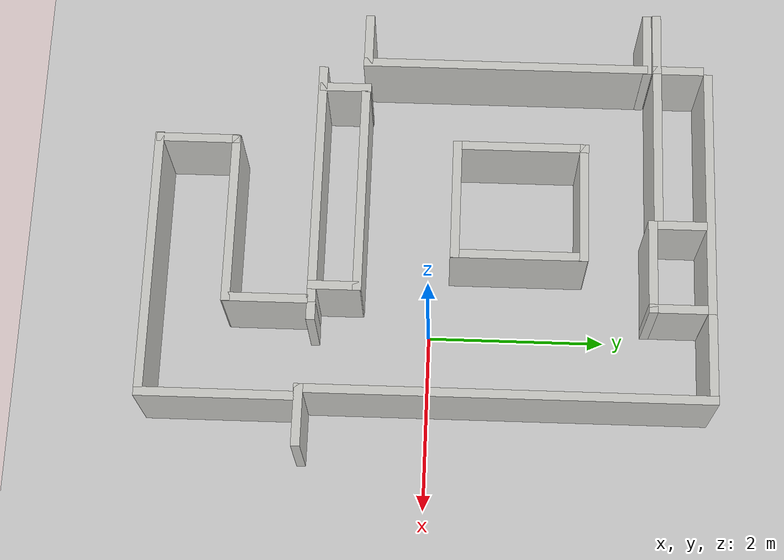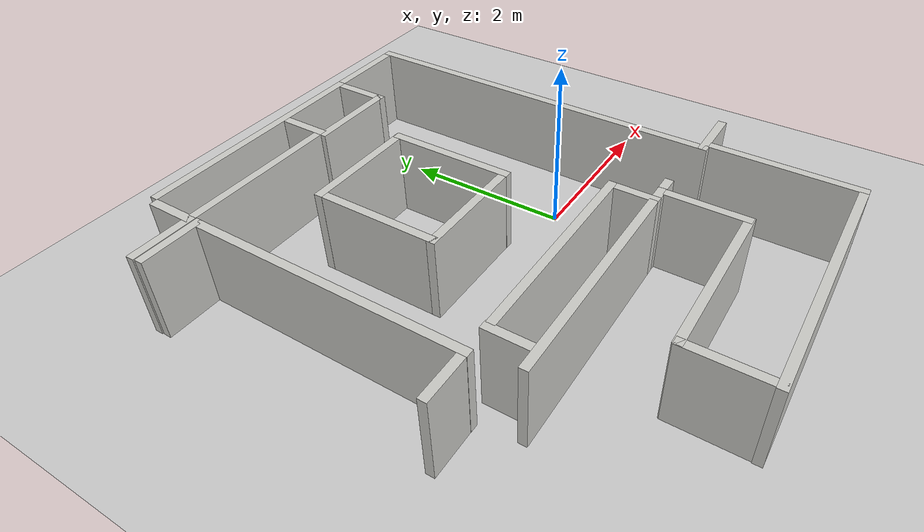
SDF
<sdf version="1.6">
 <world name="default">
  <scene><ambient>0.4 0.4 0.4 1</ambient><background>0.7 0.7 0.7 1</background><shadows>1</shadows></scene>
  <light name="sun" type="directional">
   <pose>0 0 10 0 -0 0</pose>
   <diffuse>0.8 0.8 0.8 1</diffuse>
   <specular>0.2 0.2 0.2 1</specular>
   <attenuation>
    <range>1000</range>
    <constant>0.9</constant>
    <linear>0.01</linear>
    <quadratic>0.001</quadratic>
   </attenuation>
   <direction>-0.5 0.1 -0.9</direction>
  </light>
  <model name="ground_plane">
   <static>1</static>
   <link name="link">
    <collision name="collision">
     <geometry><plane><normal>0 0 1</normal><size>100 100</size></plane></geometry>
     <surface>
      <contact><collide_bitmask>65535</collide_bitmask></contact>
      <friction><ode><mu>100</mu><mu2>50</mu2></ode></friction>
     </surface>
    </collision>
    <visual name="visual">
     <cast_shadows>0</cast_shadows>
     <geometry><plane><normal>0 0 1</normal><size>100 100</size></plane></geometry>
     <material>
      <script><uri>file://media/materials/scripts/gazebo.material</uri><name>Gazebo/Grey</name></script>
     </material>
    </visual>
   </link>
  </model>
  <physics name="default_physics" default="0" type="ode">
   <real_time_update_rate>1000</real_time_update_rate>
   <max_step_size>0.001</max_step_size>
   <real_time_factor>1</real_time_factor>
   <ode>
    <solver>
     <type>quick</type>
     <iters>150</iters>
     <precon_iters>0</precon_iters>
     <sor>1.4</sor>
     <use_dynamic_moi_rescaling>1</use_dynamic_moi_rescaling>
    </solver>
    <constraints>
     <cfm>1e-05</cfm>
     <erp>0.2</erp>
     <contact_max_correcting_vel>2000</contact_max_correcting_vel>
     <contact_surface_layer>0.01</contact_surface_layer>
    </constraints>
   </ode>
  </physics>
  <gravity>0 0 -9.8</gravity>
  <magnetic_field>6e-06 2.3e-05 -4.2e-05</magnetic_field>
  <atmosphere type="adiabatic"/>
  <audio><device>default</device></audio>
  <spherical_coordinates>
   <surface_model>EARTH_WGS84</surface_model>
   <latitude_deg>0</latitude_deg>
   <longitude_deg>0</longitude_deg>
   <elevation>0</elevation>
   <heading_deg>0</heading_deg>
  </spherical_coordinates>
  <model name="kaeriLab">
   <pose>-1.08229 0.002699 0 0 -0 0</pose>
   <link name="Wall_35">
    <collision name="Wall_35_Collision">
     <geometry><box><size>2.89 0.1 1</size></box></geometry>
     <pose>0 0 0.5 0 -0 0</pose>
    </collision>
    <visual name="Wall_35_Visual">
     <pose>0 0 0.5 0 -0 0</pose>
     <geometry><box><size>2.89 0.1 1</size></box></geometry>
     <material>
      <script><uri>file://media/materials/scripts/gazebo.material</uri><name>Gazebo/CeilingTiled</name></script>
      <ambient>0.921569 0.807843 0.615686 1</ambient>
     </material>
     <meta><layer>0</layer></meta>
    </visual>
    <pose>-0.440244 3.11379 0 0 -0 0</pose>
   </link>
   <link name="Wall_39">
    <collision name="Wall_39_Collision">
     <geometry><box><size>0.65 0.1 1</size></box></geometry>
     <pose>0 0 0.5 0 -0 0</pose>
    </collision>
    <visual name="Wall_39_Visual">
     <pose>0 0 0.5 0 -0 0</pose>
     <geometry><box><size>0.65 0.1 1</size></box></geometry>
     <material>
      <script><uri>file://media/materials/scripts/gazebo.material</uri><name>Gazebo/CeilingTiled</name></script>
      <ambient>0.921569 0.807843 0.615686 1</ambient>
     </material>
     <meta><layer>0</layer></meta>
    </visual>
    <pose>0.952886 2.74315 0 0 -0 -1.5708</pose>
   </link>
   <link name="Wall_41">
    <collision name="Wall_41_Collision">
     <geometry><box><size>1.08 0.1 1</size></box></geometry>
     <pose>0 0 0.5 0 -0 0</pose>
    </collision>
    <visual name="Wall_41_Visual">
     <pose>0 0 0.5 0 -0 0</pose>
     <geometry><box><size>1.08 0.1 1</size></box></geometry>
     <material>
      <script><uri>file://media/materials/scripts/gazebo.material</uri><name>Gazebo/CeilingTiled</name></script>
      <ambient>0.921569 0.807843 0.615686 1</ambient>
     </material>
     <meta><layer>0</layer></meta>
    </visual>
    <pose>0.463149 2.46825 0 0 -0 0</pose>
   </link>
   <link name="Wall_43">
    <collision name="Wall_43_Collision">
     <geometry><box><size>0.585 0.1 1</size></box></geometry>
     <pose>0 0 0.5 0 -0 0</pose>
    </collision>
    <visual name="Wall_43_Visual">
     <pose>0 0 0.5 0 -0 0</pose>
     <geometry><box><size>0.585 0.1 1</size></box></geometry>
     <material>
      <script><uri>file://media/materials/scripts/gazebo.material</uri><name>Gazebo/CeilingTiled</name></script>
      <ambient>0.921569 0.807843 0.615686 1</ambient>
     </material>
     <meta><layer>0</layer></meta>
    </visual>
    <pose>-0.027139 2.78202 0 0 -0 -1.5708</pose>
   </link>
   <link name="Wall_45">
    <collision name="Wall_45_Collision">
     <geometry><box><size>1.81 0.1 1</size></box></geometry>
     <pose>0 0 0.5 0 -0 0</pose>
    </collision>
    <visual name="Wall_45_Visual">
     <pose>0 0 0.5 0 -0 0</pose>
     <geometry><box><size>1.81 0.1 1</size></box></geometry>
     <material>
      <script><uri>file://media/materials/scripts/gazebo.material</uri><name>Gazebo/CeilingTiled</name></script>
      <ambient>0.921569 0.807843 0.615686 1</ambient>
     </material>
     <meta><layer>0</layer></meta>
    </visual>
    <pose>-0.980735 2.53224 0 0 -0 0</pose>
   </link>
   <link name="Wall_47">
    <collision name="Wall_47_Collision">
     <geometry><box><size>0.585 0.1 1</size></box></geometry>
     <pose>0 0 0.5 0 -0 0</pose>
    </collision>
    <visual name="Wall_47_Visual">
     <pose>0 0 0.5 0 -0 0</pose>
     <geometry><box><size>0.585 0.1 1</size></box></geometry>
     <material>
      <script><uri>file://media/materials/scripts/gazebo.material</uri><name>Gazebo/CeilingTiled</name></script>
      <ambient>0.921569 0.807843 0.615686 1</ambient>
     </material>
     <meta><layer>0</layer></meta>
    </visual>
    <pose>-1.92548 2.77441 0 0 -0 -1.5708</pose>
   </link>
   <link name="Wall_50">
    <collision name="Wall_50_Collision">
     <geometry><box><size>0.93 0.1 1</size></box></geometry>
     <pose>0 0 0.5 0 -0 0</pose>
    </collision>
    <visual name="Wall_50_Visual">
     <pose>0 0 0.5 0 -0 0</pose>
     <geometry><box><size>0.93 0.1 1</size></box></geometry>
     <material>
      <script><uri>file://media/materials/scripts/gazebo.material</uri><name>Gazebo/CeilingTiled</name></script>
      <ambient>0.921569 0.807843 0.615686 1</ambient>
     </material>
     <meta><layer>0</layer></meta>
    </visual>
    <pose>1.46647 3.11553 0 0 -0 0</pose>
   </link>
   <link name="Wall_52">
    <collision name="Wall_52_Collision">
     <geometry><box><size>4.6 0.1 1</size></box></geometry>
     <pose>0 0 0.5 0 -0 0</pose>
    </collision>
    <visual name="Wall_52_Visual">
     <pose>0 0 0.5 0 -0 0</pose>
     <geometry><box><size>4.6 0.1 1</size></box></geometry>
     <material>
      <script><uri>file://media/materials/scripts/gazebo.material</uri><name>Gazebo/CeilingTiled</name></script>
      <ambient>0.921569 0.807843 0.615686 1</ambient>
     </material>
     <meta><layer>0</layer></meta>
    </visual>
    <pose>1.97486 0.8655 0 0 -0 -1.5708</pose>
   </link>
   <link name="Wall_54">
    <collision name="Wall_54_Collision">
     <geometry><box><size>0.735 0.1 1</size></box></geometry>
     <pose>0 0 0.5 0 -0 0</pose>
    </collision>
    <visual name="Wall_54_Visual">
     <pose>0 0 0.5 0 -0 0</pose>
     <geometry><box><size>0.735 0.1 1</size></box></geometry>
     <material>
      <script><uri>file://media/materials/scripts/gazebo.material</uri><name>Gazebo/CeilingTiled</name></script>
      <ambient>0.921569 0.807843 0.615686 1</ambient>
     </material>
     <meta><layer>0</layer></meta>
    </visual>
    <pose>-2.25109 2.53005 0 0 -0 0</pose>
   </link>
   <link name="Wall_56">
    <collision name="Wall_56_Collision">
     <geometry><box><size>3.265 0.1 1</size></box></geometry>
     <pose>0 0 0.5 0 -0 0</pose>
    </collision>
    <visual name="Wall_56_Visual">
     <pose>0 0 0.5 0 -0 0</pose>
     <geometry><box><size>3.265 0.1 1</size></box></geometry>
     <material>
      <script><uri>file://media/materials/scripts/gazebo.material</uri><name>Gazebo/CeilingTiled</name></script>
      <ambient>0.921569 0.807843 0.615686 1</ambient>
     </material>
     <meta><layer>0</layer></meta>
    </visual>
    <pose>-1.92759 0.790342 0 0 -0 -1.5708</pose>
   </link>
   <link name="Wall_58">
    <collision name="Wall_58_Collision">
     <geometry><box><size>0.735 0.1 1</size></box></geometry>
     <pose>0 0 0.5 0 -0 0</pose>
    </collision>
    <visual name="Wall_58_Visual">
     <pose>0 0 0.5 0 -0 0</pose>
     <geometry><box><size>0.735 0.1 1</size></box></geometry>
     <material>
      <script><uri>file://media/materials/scripts/gazebo.material</uri><name>Gazebo/CeilingTiled</name></script>
      <ambient>0.921569 0.807843 0.615686 1</ambient>
     </material>
     <meta><layer>0</layer></meta>
    </visual>
    <pose>-2.24309 2.42006 0 0 -0 0</pose>
   </link>
   <link name="Wall_60">
    <collision name="Wall_60_Collision">
     <geometry><box><size>0.635 0.1 1</size></box></geometry>
     <pose>0 0 0.5 0 -0 0</pose>
    </collision>
    <visual name="Wall_60_Visual">
     <pose>0 0 0.5 0 -0 0</pose>
     <geometry><box><size>0.635 0.1 1</size></box></geometry>
     <material>
      <script><uri>file://media/materials/scripts/gazebo.material</uri><name>Gazebo/CeilingTiled</name></script>
      <ambient>0.921569 0.807843 0.615686 1</ambient>
     </material>
     <meta><layer>0</layer></meta>
    </visual>
    <pose>-2.20139 -0.789488 0 0 -0 0</pose>
   </link>
   <link name="Wall_62">
    <collision name="Wall_62_Collision">
     <geometry><box><size>1.4 0.1 1</size></box></geometry>
     <pose>0 0 0.5 0 -0 0</pose>
    </collision>
    <visual name="Wall_62_Visual">
     <pose>0 0 0.5 0 -0 0</pose>
     <geometry><box><size>1.4 0.1 1</size></box></geometry>
     <material>
      <script><uri>file://media/materials/scripts/gazebo.material</uri><name>Gazebo/CeilingTiled</name></script>
      <ambient>0.921569 0.807843 0.615686 1</ambient>
     </material>
     <meta><layer>0</layer></meta>
    </visual>
    <pose>-0.272595 1.70105 0 0 -0 0</pose>
   </link>
   <link name="Wall_65">
    <collision name="Wall_65_Collision">
     <geometry><box><size>1.53 0.1 1</size></box></geometry>
     <pose>0 0 0.5 0 -0 0</pose>
    </collision>
    <visual name="Wall_65_Visual">
     <pose>0 0 0.5 0 -0 0</pose>
     <geometry><box><size>1.53 0.1 1</size></box></geometry>
     <material>
      <script><uri>file://media/materials/scripts/gazebo.material</uri><name>Gazebo/CeilingTiled</name></script>
      <ambient>0.921569 0.807843 0.615686 1</ambient>
     </material>
     <meta><layer>0</layer></meta>
    </visual>
    <pose>-0.922199 0.986325 0 0 -0 -1.5708</pose>
   </link>
   <link name="Wall_68">
    <collision name="Wall_68_Collision">
     <geometry><box><size>1.53 0.1 1</size></box></geometry>
     <pose>0 0 0.5 0 -0 0</pose>
    </collision>
    <visual name="Wall_68_Visual">
     <pose>0 0 0.5 0 -0 0</pose>
     <geometry><box><size>1.53 0.1 1</size></box></geometry>
     <material>
      <script><uri>file://media/materials/scripts/gazebo.material</uri><name>Gazebo/CeilingTiled</name></script>
      <ambient>0.921569 0.807843 0.615686 1</ambient>
     </material>
     <meta><layer>0</layer></meta>
    </visual>
    <pose>0.378322 0.978907 0 0 -0 -1.5708</pose>
   </link>
   <link name="Wall_70">
    <collision name="Wall_70_Collision">
     <geometry><box><size>1.4 0.1 1</size></box></geometry>
     <pose>0 0 0.5 0 -0 0</pose>
    </collision>
    <visual name="Wall_70_Visual">
     <pose>0 0 0.5 0 -0 0</pose>
     <geometry><box><size>1.4 0.1 1</size></box></geometry>
     <material>
      <script><uri>file://media/materials/scripts/gazebo.material</uri><name>Gazebo/CeilingTiled</name></script>
      <ambient>0.921569 0.807843 0.615686 1</ambient>
     </material>
     <meta><layer>0</layer></meta>
    </visual>
    <pose>-0.272392 0.266424 0 0 -0 0</pose>
   </link>
   <link name="Wall_72">
    <collision name="Wall_72_Collision">
     <geometry><box><size>2.4083 0.1 1</size></box></geometry>
     <pose>0 0 0.5 0 -0 0</pose>
    </collision>
    <visual name="Wall_72_Visual">
     <pose>0 0 0.5 0 -0 0</pose>
     <geometry><box><size>2.4083 0.1 1</size></box></geometry>
     <material>
      <script><uri>file://media/materials/scripts/gazebo.material</uri><name>Gazebo/CeilingTiled</name></script>
      <ambient>0.921569 0.807843 0.615686 1</ambient>
     </material>
     <meta><layer>0</layer></meta>
    </visual>
    <pose>-0.359747 -0.799945 0 0 -0 0</pose>
   </link>
   <link name="Wall_74">
    <collision name="Wall_74_Collision">
     <geometry><box><size>0.585 0.1 1</size></box></geometry>
     <pose>0 0 0.5 0 -0 0</pose>
    </collision>
    <visual name="Wall_74_Visual">
     <pose>0 0 0.5 0 -0 0</pose>
     <geometry><box><size>0.585 0.1 1</size></box></geometry>
     <material>
      <script><uri>file://media/materials/scripts/gazebo.material</uri><name>Gazebo/CeilingTiled</name></script>
      <ambient>0.921569 0.807843 0.615686 1</ambient>
     </material>
     <meta><layer>0</layer></meta>
    </visual>
    <pose>0.795076 -1.05461 0 0 -0 -1.5708</pose>
   </link>
   <link name="Wall_76">
    <collision name="Wall_76_Collision">
     <geometry><box><size>2.864 0.1 1</size></box></geometry>
     <pose>0 0 0.5 0 -0 0</pose>
    </collision>
    <visual name="Wall_76_Visual">
     <pose>0 0 0.5 0 -0 0</pose>
     <geometry><box><size>2.864 0.1 1</size></box></geometry>
     <material>
      <script><uri>file://media/materials/scripts/gazebo.material</uri><name>Gazebo/CeilingTiled</name></script>
      <ambient>0.921569 0.807843 0.615686 1</ambient>
     </material>
     <meta><layer>0</layer></meta>
    </visual>
    <pose>-0.417595 -1.29695 0 0 -0 0</pose>
   </link>
   <link name="Wall_82">
    <collision name="Wall_82_Collision">
     <geometry><box><size>0.585 0.1 1</size></box></geometry>
     <pose>0 0 0.5 0 -0 0</pose>
    </collision>
    <visual name="Wall_82_Visual">
     <pose>0 0 0.5 0 -0 0</pose>
     <geometry><box><size>0.585 0.1 1</size></box></geometry>
     <material>
      <script><uri>file://media/materials/scripts/gazebo.material</uri><name>Gazebo/CeilingTiled</name></script>
      <ambient>0.921569 0.807843 0.615686 1</ambient>
     </material>
     <meta><layer>0</layer></meta>
    </visual>
    <pose>-1.60063 -1.03452 0 0 -0 -1.5708</pose>
   </link>
   <link name="Wall_84">
    <collision name="Wall_84_Collision">
     <geometry><box><size>0.945 0.1 1</size></box></geometry>
     <pose>0 0 0.5 0 -0 0</pose>
    </collision>
    <visual name="Wall_84_Visual">
     <pose>0 0 0.5 0 -0 0</pose>
     <geometry><box><size>0.945 0.1 1</size></box></geometry>
     <material>
      <script><uri>file://media/materials/scripts/gazebo.material</uri><name>Gazebo/CeilingTiled</name></script>
      <ambient>0.921569 0.807843 0.615686 1</ambient>
     </material>
     <meta><layer>0</layer></meta>
    </visual>
    <pose>0.960864 -1.80618 0 0 -0 -1.5708</pose>
   </link>
   <link name="Wall_86">
    <collision name="Wall_86_Collision">
     <geometry><box><size>1.97 0.1 1</size></box></geometry>
     <pose>0 0 0.5 0 -0 0</pose>
    </collision>
    <visual name="Wall_86_Visual">
     <pose>0 0 0.5 0 -0 0</pose>
     <geometry><box><size>1.97 0.1 1</size></box></geometry>
     <material>
      <script><uri>file://media/materials/scripts/gazebo.material</uri><name>Gazebo/CeilingTiled</name></script>
      <ambient>0.921569 0.807843 0.615686 1</ambient>
     </material>
     <meta><layer>0</layer></meta>
    </visual>
    <pose>0.022405 -2.24094 0 0 -0 0</pose>
   </link>
   <link name="Wall_88">
    <collision name="Wall_88_Collision">
     <geometry><box><size>0.69 0.1 1</size></box></geometry>
     <pose>0 0 0.5 0 -0 0</pose>
    </collision>
    <visual name="Wall_88_Visual">
     <pose>0 0 0.5 0 -0 0</pose>
     <geometry><box><size>0.69 0.1 1</size></box></geometry>
     <material>
      <script><uri>file://media/materials/scripts/gazebo.material</uri><name>Gazebo/CeilingTiled</name></script>
      <ambient>0.921569 0.807843 0.615686 1</ambient>
     </material>
     <meta><layer>0</layer></meta>
    </visual>
    <pose>2.27359 -1.37985 0 0 -0 0</pose>
   </link>
   <link name="Wall_90">
    <collision name="Wall_90_Collision">
     <geometry><box><size>1.74 0.1 1</size></box></geometry>
     <pose>0 0 0.5 0 -0 0</pose>
    </collision>
    <visual name="Wall_90_Visual">
     <pose>0 0 0.5 0 -0 0</pose>
     <geometry><box><size>1.74 0.1 1</size></box></geometry>
     <material>
      <script><uri>file://media/materials/scripts/gazebo.material</uri><name>Gazebo/CeilingTiled</name></script>
      <ambient>0.921569 0.807843 0.615686 1</ambient>
     </material>
     <meta><layer>0</layer></meta>
    </visual>
    <pose>2.06422 -2.29386 0 0 -0 -1.5708</pose>
   </link>
   <link name="Wall_92">
    <collision name="Wall_92_Collision">
     <geometry><box><size>3 0.1 1</size></box></geometry>
     <pose>0 0 0.5 0 -0 0</pose>
    </collision>
    <visual name="Wall_92_Visual">
     <pose>0 0 0.5 0 -0 0</pose>
     <geometry><box><size>3 0.1 1</size></box></geometry>
     <material>
      <script><uri>file://media/materials/scripts/gazebo.material</uri><name>Gazebo/CeilingTiled</name></script>
      <ambient>0.921569 0.807843 0.615686 1</ambient>
     </material>
     <meta><layer>0</layer></meta>
    </visual>
    <pose>0.521102 -3.11553 0 0 -0 0</pose>
   </link>
   <link name="Wall_94">
    <collision name="Wall_94_Collision">
     <geometry><box><size>0.2 0.1 1</size></box></geometry>
     <pose>0 0 0.5 0 -0 0</pose>
    </collision>
    <visual name="Wall_94_Visual">
     <pose>0 0 0.5 0 -0 0</pose>
     <geometry><box><size>0.2 0.1 1</size></box></geometry>
     <material>
      <script><uri>file://media/materials/scripts/gazebo.material</uri><name>Gazebo/CeilingTiled</name></script>
      <ambient>0.921569 0.807843 0.615686 1</ambient>
     </material>
     <meta><layer>0</layer></meta>
    </visual>
    <pose>1.09669 -1.29431 0 0 -0 0</pose>
   </link>
   <link name="Wall_96">
    <collision name="Wall_96_Collision">
     <geometry><box><size>0.95 0.1 1</size></box></geometry>
     <pose>0 0 0.5 0 -0 0</pose>
    </collision>
    <visual name="Wall_96_Visual">
     <pose>0 0 0.5 0 -0 0</pose>
     <geometry><box><size>0.95 0.1 1</size></box></geometry>
     <material>
      <script><uri>file://media/materials/scripts/gazebo.material</uri><name>Gazebo/CeilingTiled</name></script>
      <ambient>0.921569 0.807843 0.615686 1</ambient>
     </material>
     <meta><layer>0</layer></meta>
    </visual>
    <pose>-0.919972 -2.67644 0 0 -0 -1.5708</pose>
   </link>
   <static>1</static>
  </model>
 </world>
</sdf>
